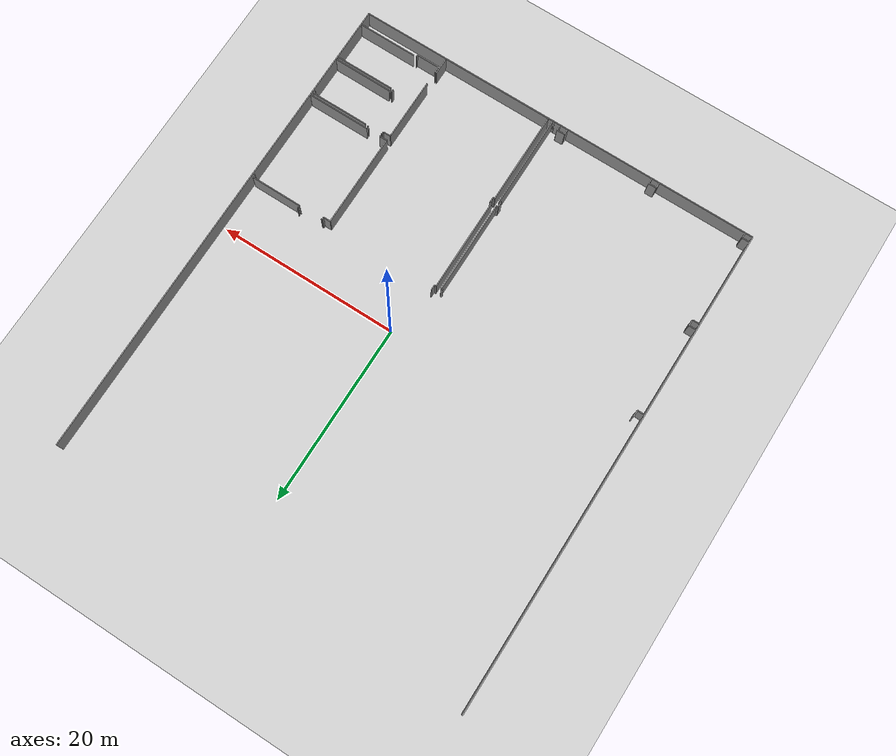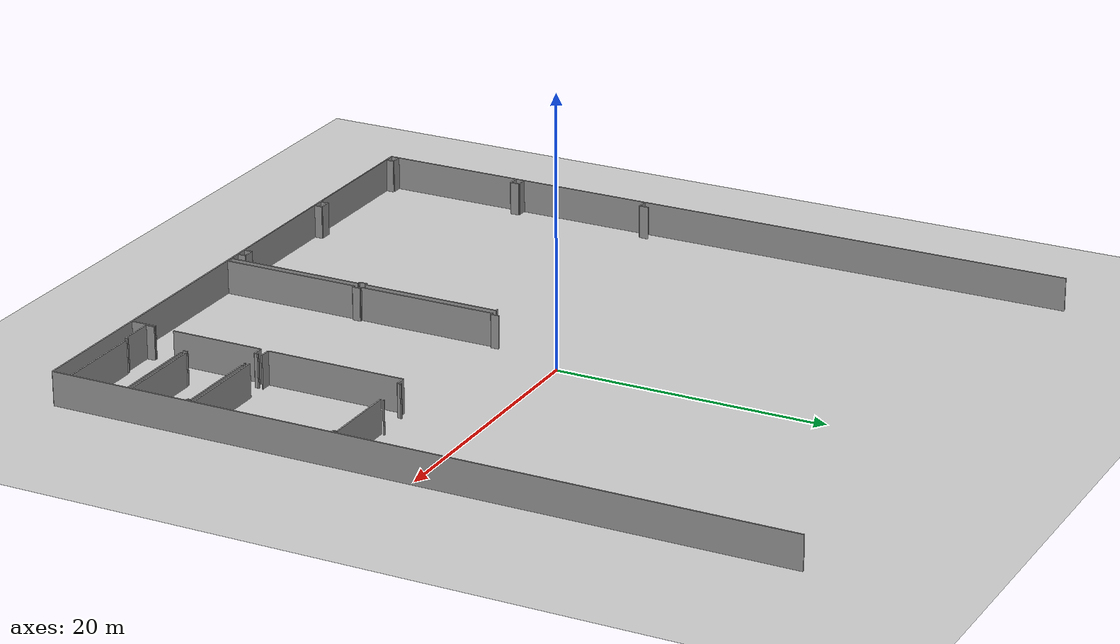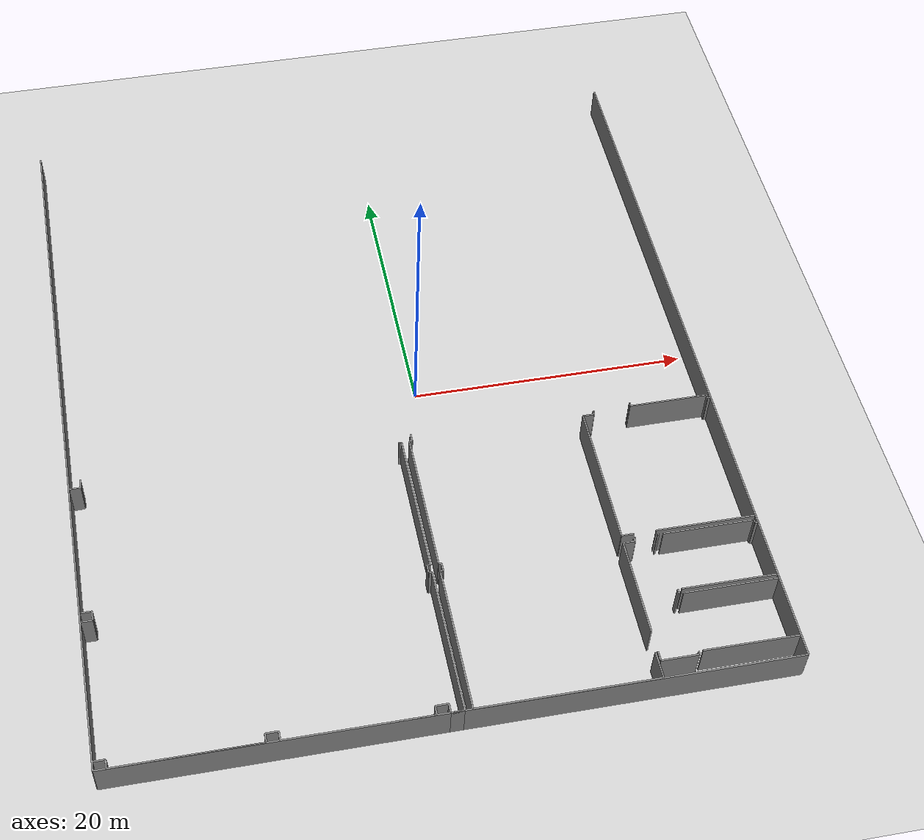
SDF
<sdf version="1.6">
 <world name="default">
  <model name="ground_plane">
   <static>1</static>
   <link name="link">
    <collision name="collision">
     <geometry><plane><normal>0 0 1</normal><size>100 100</size></plane></geometry>
     <surface><friction><ode><mu>100</mu><mu2>50</mu2></ode></friction></surface>
    </collision>
    <visual name="visual">
     <cast_shadows>0</cast_shadows>
     <geometry><plane><normal>0 0 1</normal><size>100 100</size></plane></geometry>
     <material>
      <script><uri>file://media/materials/scripts/gazebo.material</uri><name>Gazebo/Grey</name></script>
     </material>
    </visual>
   </link>
  </model>
  <model name="0510032323">
   <static>1</static>
   <link name="Wall_0">
    <collision name="Wall_0_Collision">
     <geometry><box><size>0.897742633573 0.1 2.5</size></box></geometry>
     <pose>0.448871316787 0 1.25 0 0 0</pose>
    </collision>
    <visual name="Wall_0_Visual">
     <pose>0.448871316787 0 1.25 0 0 0</pose>
     <geometry><box><size>0.897742633573 0.1 2.5</size></box></geometry>
     <material>
      <script><uri>file://media/materials/scripts/gazebo.material</uri><name>Gazebo/Grey</name></script>
      <ambient>1 1 1 1</ambient>
     </material>
    </visual>
    <pose>23.3359776104 -54.5173348226 0 0 0 3.14159265359</pose>
   </link>
   <link name="Wall_1">
    <collision name="Wall_1_Collision">
     <geometry><box><size>0.643384336149 0.1 2.5</size></box></geometry>
     <pose>0.321692168074 0 1.25 0 0 0</pose>
    </collision>
    <visual name="Wall_1_Visual">
     <pose>0.321692168074 0 1.25 0 0 0</pose>
     <geometry><box><size>0.643384336149 0.1 2.5</size></box></geometry>
     <material>
      <script><uri>file://media/materials/scripts/gazebo.material</uri><name>Gazebo/Grey</name></script>
      <ambient>1 1 1 1</ambient>
     </material>
    </visual>
    <pose>22.4382349768 -54.5173348226 0 0 0 1.57079632679</pose>
   </link>
   <link name="Wall_2">
    <collision name="Wall_2_Collision">
     <geometry><box><size>0.882892373693 0.1 2.5</size></box></geometry>
     <pose>0.441446186847 0 1.25 0 0 0</pose>
    </collision>
    <visual name="Wall_2_Visual">
     <pose>0.441446186847 0 1.25 0 0 0</pose>
     <geometry><box><size>0.882892373693 0.1 2.5</size></box></geometry>
     <material>
      <script><uri>file://media/materials/scripts/gazebo.material</uri><name>Gazebo/Grey</name></script>
      <ambient>1 1 1 1</ambient>
     </material>
    </visual>
    <pose>22.4382349768 -53.8739504864 0 0 0 3.14159265359</pose>
   </link>
   <link name="Wall_3">
    <collision name="Wall_3_Collision">
     <geometry><box><size>0.643003560255 0.1 2.5</size></box></geometry>
     <pose>0.321501780127 0 1.25 0 0 0</pose>
    </collision>
    <visual name="Wall_3_Visual">
     <pose>0.321501780127 0 1.25 0 0 0</pose>
     <geometry><box><size>0.643003560255 0.1 2.5</size></box></geometry>
     <material>
      <script><uri>file://media/materials/scripts/gazebo.material</uri><name>Gazebo/Grey</name></script>
      <ambient>1 1 1 1</ambient>
     </material>
    </visual>
    <pose>21.5553426031 -53.8739504864 0 0 0 -1.57079632679</pose>
   </link>
   <link name="Wall_4">
    <collision name="Wall_4_Collision">
     <geometry><box><size>9.93330075584 0.1 2.5</size></box></geometry>
     <pose>4.96665037792 0 1.25 0 0 0</pose>
    </collision>
    <visual name="Wall_4_Visual">
     <pose>4.96665037792 0 1.25 0 0 0</pose>
     <geometry><box><size>9.93330075584 0.1 2.5</size></box></geometry>
     <material>
      <script><uri>file://media/materials/scripts/gazebo.material</uri><name>Gazebo/Grey</name></script>
      <ambient>1 1 1 1</ambient>
     </material>
    </visual>
    <pose>21.5553426031 -54.5169540467 0 0 0 3.14159265359</pose>
   </link>
   <link name="Wall_5">
    <collision name="Wall_5_Collision">
     <geometry><box><size>0.643003560255 0.1 2.5</size></box></geometry>
     <pose>0.321501780127 0 1.25 0 0 0</pose>
    </collision>
    <visual name="Wall_5_Visual">
     <pose>0.321501780127 0 1.25 0 0 0</pose>
     <geometry><box><size>0.643003560255 0.1 2.5</size></box></geometry>
     <material>
      <script><uri>file://media/materials/scripts/gazebo.material</uri><name>Gazebo/Grey</name></script>
      <ambient>1 1 1 1</ambient>
     </material>
    </visual>
    <pose>11.6220418473 -54.5169540467 0 0 0 1.57079632679</pose>
   </link>
   <link name="Wall_6">
    <collision name="Wall_6_Collision">
     <geometry><box><size>0.873372976335 0.1 2.5</size></box></geometry>
     <pose>0.436686488167 0 1.25 0 0 0</pose>
    </collision>
    <visual name="Wall_6_Visual">
     <pose>0.436686488167 0 1.25 0 0 0</pose>
     <geometry><box><size>0.873372976335 0.1 2.5</size></box></geometry>
     <material>
      <script><uri>file://media/materials/scripts/gazebo.material</uri><name>Gazebo/Grey</name></script>
      <ambient>1 1 1 1</ambient>
     </material>
    </visual>
    <pose>11.6220418473 -53.8739504864 0 0 0 3.14159265359</pose>
   </link>
   <link name="Wall_7">
    <collision name="Wall_7_Collision">
     <geometry><box><size>0.633357237598 0.1 2.5</size></box></geometry>
     <pose>0.316678618799 0 1.25 0 0 0</pose>
    </collision>
    <visual name="Wall_7_Visual">
     <pose>0.316678618799 0 1.25 0 0 0</pose>
     <geometry><box><size>0.633357237598 0.1 2.5</size></box></geometry>
     <material>
      <script><uri>file://media/materials/scripts/gazebo.material</uri><name>Gazebo/Grey</name></script>
      <ambient>1 1 1 1</ambient>
     </material>
    </visual>
    <pose>10.7486688709 -53.8739504864 0 0 0 -1.57079632679</pose>
   </link>
   <link name="Wall_8">
    <collision name="Wall_8_Collision">
     <geometry><box><size>9.90753492032 0.1 2.5</size></box></geometry>
     <pose>4.95376746016 0 1.25 0 0 0</pose>
    </collision>
    <visual name="Wall_8_Visual">
     <pose>4.95376746016 0 1.25 0 0 0</pose>
     <geometry><box><size>9.90753492032 0.1 2.5</size></box></geometry>
     <material>
      <script><uri>file://media/materials/scripts/gazebo.material</uri><name>Gazebo/Grey</name></script>
      <ambient>1 1 1 1</ambient>
     </material>
    </visual>
    <pose>10.7486688709 -54.507307724 0 0 0 3.14159265359</pose>
   </link>
   <link name="Wall_9">
    <collision name="Wall_9_Collision">
     <geometry><box><size>0.62244166196 0.1 2.5</size></box></geometry>
     <pose>0.31122083098 0 1.25 0 0 0</pose>
    </collision>
    <visual name="Wall_9_Visual">
     <pose>0.31122083098 0 1.25 0 0 0</pose>
     <geometry><box><size>0.62244166196 0.1 2.5</size></box></geometry>
     <material>
      <script><uri>file://media/materials/scripts/gazebo.material</uri><name>Gazebo/Grey</name></script>
      <ambient>1 1 1 1</ambient>
     </material>
    </visual>
    <pose>0.841133950613 -54.507307724 0 0 0 1.57079632679</pose>
   </link>
   <link name="Wall_10">
    <collision name="Wall_10_Collision">
     <geometry><box><size>0.820318201722 0.1 2.5</size></box></geometry>
     <pose>0.410159100861 0 1.25 0 0 0</pose>
    </collision>
    <visual name="Wall_10_Visual">
     <pose>0.410159100861 0 1.25 0 0 0</pose>
     <geometry><box><size>0.820318201722 0.1 2.5</size></box></geometry>
     <material>
      <script><uri>file://media/materials/scripts/gazebo.material</uri><name>Gazebo/Grey</name></script>
      <ambient>1 1 1 1</ambient>
     </material>
    </visual>
    <pose>0.841133950613 -53.8848660621 0 0 0 3.14159265359</pose>
   </link>
   <link name="Wall_11">
    <collision name="Wall_11_Collision">
     <geometry><box><size>0.813845011518 0.1 2.5</size></box></geometry>
     <pose>0.406922505759 0 1.25 0 0 0</pose>
    </collision>
    <visual name="Wall_11_Visual">
     <pose>0.406922505759 0 1.25 0 0 0</pose>
     <geometry><box><size>0.813845011518 0.1 2.5</size></box></geometry>
     <material>
      <script><uri>file://media/materials/scripts/gazebo.material</uri><name>Gazebo/Grey</name></script>
      <ambient>1 1 1 1</ambient>
     </material>
    </visual>
    <pose>0.020815748891 -43.7803430791 0 0 0 0.0</pose>
   </link>
   <link name="Wall_12">
    <collision name="Wall_12_Collision">
     <geometry><box><size>0.692631351818 0.1 2.5</size></box></geometry>
     <pose>0.346315675909 0 1.25 0 0 0</pose>
    </collision>
    <visual name="Wall_12_Visual">
     <pose>0.346315675909 0 1.25 0 0 0</pose>
     <geometry><box><size>0.692631351818 0.1 2.5</size></box></geometry>
     <material>
      <script><uri>file://media/materials/scripts/gazebo.material</uri><name>Gazebo/Grey</name></script>
      <ambient>1 1 1 1</ambient>
     </material>
    </visual>
    <pose>0.834660760409 -43.7803430791 0 0 0 1.57079632679</pose>
   </link>
   <link name="Wall_13">
    <collision name="Wall_13_Collision">
     <geometry><box><size>0.826283690734 0.1 2.5</size></box></geometry>
     <pose>0.413141845367 0 1.25 0 0 0</pose>
    </collision>
    <visual name="Wall_13_Visual">
     <pose>0.413141845367 0 1.25 0 0 0</pose>
     <geometry><box><size>0.826283690734 0.1 2.5</size></box></geometry>
     <material>
      <script><uri>file://media/materials/scripts/gazebo.material</uri><name>Gazebo/Grey</name></script>
      <ambient>1 1 1 1</ambient>
     </material>
    </visual>
    <pose>0.834660760409 -43.0877117273 0 0 0 3.14159265359</pose>
   </link>
   <link name="Wall_14">
    <collision name="Wall_14_Collision">
     <geometry><box><size>0.826283690734 0.1 2.5</size></box></geometry>
     <pose>0.413141845367 0 1.25 0 0 0</pose>
    </collision>
    <visual name="Wall_14_Visual">
     <pose>0.413141845367 0 1.25 0 0 0</pose>
     <geometry><box><size>0.826283690734 0.1 2.5</size></box></geometry>
     <material>
      <script><uri>file://media/materials/scripts/gazebo.material</uri><name>Gazebo/Grey</name></script>
      <ambient>1 1 1 1</ambient>
     </material>
    </visual>
    <pose>0.00837706967564 -33.0062891485 0 0 0 0.0</pose>
   </link>
   <link name="Wall_15">
    <collision name="Wall_15_Collision">
     <geometry><box><size>0.701008421494 0.1 2.5</size></box></geometry>
     <pose>0.350504210747 0 1.25 0 0 0</pose>
    </collision>
    <visual name="Wall_15_Visual">
     <pose>0.350504210747 0 1.25 0 0 0</pose>
     <geometry><box><size>0.701008421494 0.1 2.5</size></box></geometry>
     <material>
      <script><uri>file://media/materials/scripts/gazebo.material</uri><name>Gazebo/Grey</name></script>
      <ambient>1 1 1 1</ambient>
     </material>
    </visual>
    <pose>0.834660760409 -33.0062891485 0 0 0 1.57079632679</pose>
   </link>
   <link name="Wall_46">
    <collision name="Wall_46_Collision">
     <geometry><box><size>0.200288120427 0.1 2.5</size></box></geometry>
     <pose>0.100144060213 0 1.25 0 0 0</pose>
    </collision>
    <visual name="Wall_46_Visual">
     <pose>0.100144060213 0 1.25 0 0 0</pose>
     <geometry><box><size>0.200288120427 0.1 2.5</size></box></geometry>
     <material>
      <script><uri>file://media/materials/scripts/gazebo.material</uri><name>Gazebo/Grey</name></script>
      <ambient>1 1 1 1</ambient>
     </material>
    </visual>
    <pose>23.1171583964 -33.1148102784 0 0 0 0.0</pose>
   </link>
   <link name="Wall_47">
    <collision name="Wall_47_Collision">
     <geometry><box><size>10.3624351888 0.1 2.5</size></box></geometry>
     <pose>5.18121759438 0 1.25 0 0 0</pose>
    </collision>
    <visual name="Wall_47_Visual">
     <pose>5.18121759438 0 1.25 0 0 0</pose>
     <geometry><box><size>10.3624351888 0.1 2.5</size></box></geometry>
     <material>
      <script><uri>file://media/materials/scripts/gazebo.material</uri><name>Gazebo/Grey</name></script>
      <ambient>1 1 1 1</ambient>
     </material>
    </visual>
    <pose>23.3174465169 -33.1148102784 0 0 0 -1.57079632679</pose>
   </link>
   <link name="Wall_48">
    <collision name="Wall_48_Collision">
     <geometry><box><size>0.217423035672 0.1 2.5</size></box></geometry>
     <pose>0.108711517836 0 1.25 0 0 0</pose>
    </collision>
    <visual name="Wall_48_Visual">
     <pose>0.108711517836 0 1.25 0 0 0</pose>
     <geometry><box><size>0.217423035672 0.1 2.5</size></box></geometry>
     <material>
      <script><uri>file://media/materials/scripts/gazebo.material</uri><name>Gazebo/Grey</name></script>
      <ambient>1 1 1 1</ambient>
     </material>
    </visual>
    <pose>23.3174465169 -43.4772454672 0 0 0 3.14159265359</pose>
   </link>
   <link name="Wall_49">
    <collision name="Wall_49_Collision">
     <geometry><box><size>0.591725739816 0.1 2.5</size></box></geometry>
     <pose>0.295862869908 0 1.25 0 0 0</pose>
    </collision>
    <visual name="Wall_49_Visual">
     <pose>0.295862869908 0 1.25 0 0 0</pose>
     <geometry><box><size>0.591725739816 0.1 2.5</size></box></geometry>
     <material>
      <script><uri>file://media/materials/scripts/gazebo.material</uri><name>Gazebo/Grey</name></script>
      <ambient>1 1 1 1</ambient>
     </material>
    </visual>
    <pose>23.1000234812 -43.4772454672 0 0 0 -1.57079632679</pose>
   </link>
   <link name="Wall_50">
    <collision name="Wall_50_Collision">
     <geometry><box><size>0.22364237528 0.1 2.5</size></box></geometry>
     <pose>0.11182118764 0 1.25 0 0 0</pose>
    </collision>
    <visual name="Wall_50_Visual">
     <pose>0.11182118764 0 1.25 0 0 0</pose>
     <geometry><box><size>0.22364237528 0.1 2.5</size></box></geometry>
     <material>
      <script><uri>file://media/materials/scripts/gazebo.material</uri><name>Gazebo/Grey</name></script>
      <ambient>1 1 1 1</ambient>
     </material>
    </visual>
    <pose>23.1000234812 -44.068971207 0 0 0 0.0</pose>
   </link>
   <link name="Wall_51">
    <collision name="Wall_51_Collision">
     <geometry><box><size>10.4483708693 0.1 2.5</size></box></geometry>
     <pose>5.22418543466 0 1.25 0 0 0</pose>
    </collision>
    <visual name="Wall_51_Visual">
     <pose>5.22418543466 0 1.25 0 0 0</pose>
     <geometry><box><size>10.4483708693 0.1 2.5</size></box></geometry>
     <material>
      <script><uri>file://media/materials/scripts/gazebo.material</uri><name>Gazebo/Grey</name></script>
      <ambient>1 1 1 1</ambient>
     </material>
    </visual>
    <pose>23.3236658565 -44.068971207 0 0 0 -1.56961798455</pose>
   </link>
   <link name="Wall_72">
    <collision name="Wall_72_Collision">
     <geometry><box><size>0.104205669753 0.1 2.5</size></box></geometry>
     <pose>0.0521028348765 0 1.25 0 0 0</pose>
    </collision>
    <visual name="Wall_72_Visual">
     <pose>0.0521028348765 0 1.25 0 0 0</pose>
     <geometry><box><size>0.104205669753 0.1 2.5</size></box></geometry>
     <material>
      <script><uri>file://media/materials/scripts/gazebo.material</uri><name>Gazebo/Grey</name></script>
      <ambient>1 1 1 1</ambient>
     </material>
    </visual>
    <pose>40.1125827394 -32.5487234488 0 0 0 3.14159265359</pose>
   </link>
   <link name="Wall_78">
    <collision name="Wall_78_Collision">
     <geometry><box><size>0.211457546661 0.1 2.5</size></box></geometry>
     <pose>0.10572877333 0 1.25 0 0 0</pose>
    </collision>
    <visual name="Wall_78_Visual">
     <pose>0.10572877333 0 1.25 0 0 0</pose>
     <geometry><box><size>0.211457546661 0.1 2.5</size></box></geometry>
     <material>
      <script><uri>file://media/materials/scripts/gazebo.material</uri><name>Gazebo/Grey</name></script>
      <ambient>1 1 1 1</ambient>
     </material>
    </visual>
    <pose>45.893776218 -33.0865059369 0 0 0 3.14159265359</pose>
   </link>
   <link name="Wall_79">
    <collision name="Wall_79_Collision">
     <geometry><box><size>0.285328070164 0.1 2.5</size></box></geometry>
     <pose>0.142664035082 0 1.25 0 0 0</pose>
    </collision>
    <visual name="Wall_79_Visual">
     <pose>0.142664035082 0 1.25 0 0 0</pose>
     <geometry><box><size>0.285328070164 0.1 2.5</size></box></geometry>
     <material>
      <script><uri>file://media/materials/scripts/gazebo.material</uri><name>Gazebo/Grey</name></script>
      <ambient>1 1 1 1</ambient>
     </material>
    </visual>
    <pose>45.6823186713 -33.0865059369 0 0 0 1.57079632679</pose>
   </link>
   <link name="Wall_80">
    <collision name="Wall_80_Collision">
     <geometry><box><size>5.6786378377 0.1 2.5</size></box></geometry>
     <pose>2.83931891885 0 1.25 0 0 0</pose>
    </collision>
    <visual name="Wall_80_Visual">
     <pose>2.83931891885 0 1.25 0 0 0</pose>
     <geometry><box><size>5.6786378377 0.1 2.5</size></box></geometry>
     <material>
      <script><uri>file://media/materials/scripts/gazebo.material</uri><name>Gazebo/Grey</name></script>
      <ambient>1 1 1 1</ambient>
     </material>
    </visual>
    <pose>45.6823186713 -32.8011778668 0 0 0 3.14159265359</pose>
   </link>
   <link name="Wall_81">
    <collision name="Wall_81_Collision">
     <geometry><box><size>0.106363399821 0.1 2.5</size></box></geometry>
     <pose>0.0531816999105 0 1.25 0 0 0</pose>
    </collision>
    <visual name="Wall_81_Visual">
     <pose>0.0531816999105 0 1.25 0 0 0</pose>
     <geometry><box><size>0.106363399821 0.1 2.5</size></box></geometry>
     <material>
      <script><uri>file://media/materials/scripts/gazebo.material</uri><name>Gazebo/Grey</name></script>
      <ambient>1 1 1 1</ambient>
     </material>
    </visual>
    <pose>37.371377076 -32.8011778668 0 0 0 3.14159265359</pose>
   </link>
   <link name="Wall_82">
    <collision name="Wall_82_Collision">
     <geometry><box><size>0.271873988564 0.1 2.5</size></box></geometry>
     <pose>0.135936994282 0 1.25 0 0 0</pose>
    </collision>
    <visual name="Wall_82_Visual">
     <pose>0.135936994282 0 1.25 0 0 0</pose>
     <geometry><box><size>0.271873988564 0.1 2.5</size></box></geometry>
     <material>
      <script><uri>file://media/materials/scripts/gazebo.material</uri><name>Gazebo/Grey</name></script>
      <ambient>1 1 1 1</ambient>
     </material>
    </visual>
    <pose>37.2650136762 -32.8011778668 0 0 0 -1.57079632679</pose>
   </link>
   <link name="Wall_83">
    <collision name="Wall_83_Collision">
     <geometry><box><size>0.78884072779 0.1 2.5</size></box></geometry>
     <pose>0.394420363895 0 1.25 0 0 0</pose>
    </collision>
    <visual name="Wall_83_Visual">
     <pose>0.394420363895 0 1.25 0 0 0</pose>
     <geometry><box><size>0.78884072779 0.1 2.5</size></box></geometry>
     <material>
      <script><uri>file://media/materials/scripts/gazebo.material</uri><name>Gazebo/Grey</name></script>
      <ambient>1 1 1 1</ambient>
     </material>
    </visual>
    <pose>37.2650136762 -33.0730518553 0 0 0 3.14159265359</pose>
   </link>
   <link name="Wall_84">
    <collision name="Wall_84_Collision">
     <geometry><box><size>10.4185361705 0.1 2.5</size></box></geometry>
     <pose>5.20926808527 0 1.25 0 0 0</pose>
    </collision>
    <visual name="Wall_84_Visual">
     <pose>5.20926808527 0 1.25 0 0 0</pose>
     <geometry><box><size>10.4185361705 0.1 2.5</size></box></geometry>
     <material>
      <script><uri>file://media/materials/scripts/gazebo.material</uri><name>Gazebo/Grey</name></script>
      <ambient>1 1 1 1</ambient>
     </material>
    </visual>
    <pose>36.4761729484 -33.0730518553 0 0 0 -1.57079632679</pose>
   </link>
   <link name="Wall_85">
    <collision name="Wall_85_Collision">
     <geometry><box><size>0.870834470372 0.1 2.5</size></box></geometry>
     <pose>0.435417235186 0 1.25 0 0 0</pose>
    </collision>
    <visual name="Wall_85_Visual">
     <pose>0.435417235186 0 1.25 0 0 0</pose>
     <geometry><box><size>0.870834470372 0.1 2.5</size></box></geometry>
     <material>
      <script><uri>file://media/materials/scripts/gazebo.material</uri><name>Gazebo/Grey</name></script>
      <ambient>1 1 1 1</ambient>
     </material>
    </visual>
    <pose>36.4761729484 -43.4915880259 0 0 0 0.0</pose>
   </link>
   <link name="Wall_86">
    <collision name="Wall_86_Collision">
     <geometry><box><size>6.99740437649 0.1 2.5</size></box></geometry>
     <pose>3.49870218825 0 1.25 0 0 0</pose>
    </collision>
    <visual name="Wall_86_Visual">
     <pose>3.49870218825 0 1.25 0 0 0</pose>
     <geometry><box><size>6.99740437649 0.1 2.5</size></box></geometry>
     <material>
      <script><uri>file://media/materials/scripts/gazebo.material</uri><name>Gazebo/Grey</name></script>
      <ambient>1 1 1 1</ambient>
     </material>
    </visual>
    <pose>38.8963845329 -43.4915880259 0 0 0 -0.00190458684998</pose>
   </link>
   <link name="Wall_87">
    <collision name="Wall_87_Collision">
     <geometry><box><size>2.57721817824 0.1 2.5</size></box></geometry>
     <pose>1.28860908912 0 1.25 0 0 0</pose>
    </collision>
    <visual name="Wall_87_Visual">
     <pose>1.28860908912 0 1.25 0 0 0</pose>
     <geometry><box><size>2.57721817824 0.1 2.5</size></box></geometry>
     <material>
      <script><uri>file://media/materials/scripts/gazebo.material</uri><name>Gazebo/Grey</name></script>
      <ambient>1 1 1 1</ambient>
     </material>
    </visual>
    <pose>39.0070633928 -53.2609012965 0 0 0 3.14159265359</pose>
   </link>
   <link name="Wall_88">
    <collision name="Wall_88_Collision">
     <geometry><box><size>0.674100258293 0.1 2.5</size></box></geometry>
     <pose>0.337050129146 0 1.25 0 0 0</pose>
    </collision>
    <visual name="Wall_88_Visual">
     <pose>0.337050129146 0 1.25 0 0 0</pose>
     <geometry><box><size>0.674100258293 0.1 2.5</size></box></geometry>
     <material>
      <script><uri>file://media/materials/scripts/gazebo.material</uri><name>Gazebo/Grey</name></script>
      <ambient>1 1 1 1</ambient>
     </material>
    </visual>
    <pose>36.4298452146 -53.2609012965 0 0 0 1.57079632679</pose>
   </link>
   <link name="Wall_89">
    <collision name="Wall_89_Collision">
     <geometry><box><size>6.94751004296 0.1 2.5</size></box></geometry>
     <pose>3.47375502148 0 1.25 0 0 0</pose>
    </collision>
    <visual name="Wall_89_Visual">
     <pose>3.47375502148 0 1.25 0 0 0</pose>
     <geometry><box><size>6.94751004296 0.1 2.5</size></box></geometry>
     <material>
      <script><uri>file://media/materials/scripts/gazebo.material</uri><name>Gazebo/Grey</name></script>
      <ambient>1 1 1 1</ambient>
     </material>
    </visual>
    <pose>36.4298452146 -51.0320930616 0 0 0 1.57079632679</pose>
   </link>
   <link name="Wall_90">
    <collision name="Wall_90_Collision">
     <geometry><box><size>0.836437714583 0.1 2.5</size></box></geometry>
     <pose>0.418218857292 0 1.25 0 0 0</pose>
    </collision>
    <visual name="Wall_90_Visual">
     <pose>0.418218857292 0 1.25 0 0 0</pose>
     <geometry><box><size>0.836437714583 0.1 2.5</size></box></geometry>
     <material>
      <script><uri>file://media/materials/scripts/gazebo.material</uri><name>Gazebo/Grey</name></script>
      <ambient>1 1 1 1</ambient>
     </material>
    </visual>
    <pose>36.4298452146 -44.0845830187 0 0 0 0.0</pose>
   </link>
   <link name="Wall_91">
    <collision name="Wall_91_Collision">
     <geometry><box><size>0.286851173742 0.1 2.5</size></box></geometry>
     <pose>0.143425586871 0 1.25 0 0 0</pose>
    </collision>
    <visual name="Wall_91_Visual">
     <pose>0.143425586871 0 1.25 0 0 0</pose>
     <geometry><box><size>0.286851173742 0.1 2.5</size></box></geometry>
     <material>
      <script><uri>file://media/materials/scripts/gazebo.material</uri><name>Gazebo/Grey</name></script>
      <ambient>1 1 1 1</ambient>
     </material>
    </visual>
    <pose>37.2662829292 -44.0845830187 0 0 0 1.57079632679</pose>
   </link>
   <link name="Wall_92">
    <collision name="Wall_92_Collision">
     <geometry><box><size>0.102682566176 0.1 2.5</size></box></geometry>
     <pose>0.0513412830878 0 1.25 0 0 0</pose>
    </collision>
    <visual name="Wall_92_Visual">
     <pose>0.0513412830878 0 1.25 0 0 0</pose>
     <geometry><box><size>0.102682566176 0.1 2.5</size></box></geometry>
     <material>
      <script><uri>file://media/materials/scripts/gazebo.material</uri><name>Gazebo/Grey</name></script>
      <ambient>1 1 1 1</ambient>
     </material>
    </visual>
    <pose>37.2662829292 -43.7977318449 0 0 0 0.0</pose>
   </link>
   <link name="Wall_93">
    <collision name="Wall_93_Collision">
     <geometry><box><size>0.113090440621 0.1 2.5</size></box></geometry>
     <pose>0.0565452203106 0 1.25 0 0 0</pose>
    </collision>
    <visual name="Wall_93_Visual">
     <pose>0.0565452203106 0 1.25 0 0 0</pose>
     <geometry><box><size>0.113090440621 0.1 2.5</size></box></geometry>
     <material>
      <script><uri>file://media/materials/scripts/gazebo.material</uri><name>Gazebo/Grey</name></script>
      <ambient>1 1 1 1</ambient>
     </material>
    </visual>
    <pose>38.9074270338 -43.7977318449 0 0 0 0.0</pose>
   </link>
   <link name="Wall_94">
    <collision name="Wall_94_Collision">
     <geometry><box><size>0.353360029954 0.1 2.5</size></box></geometry>
     <pose>0.176680014977 0 1.25 0 0 0</pose>
    </collision>
    <visual name="Wall_94_Visual">
     <pose>0.176680014977 0 1.25 0 0 0</pose>
     <geometry><box><size>0.353360029954 0.1 2.5</size></box></geometry>
     <material>
      <script><uri>file://media/materials/scripts/gazebo.material</uri><name>Gazebo/Grey</name></script>
      <ambient>1 1 1 1</ambient>
     </material>
    </visual>
    <pose>39.0205174744 -48.2685485458 0 0 0 -1.57079632679</pose>
   </link>
   <link name="Wall_95">
    <collision name="Wall_95_Collision">
     <geometry><box><size>0.225567074682 0.1 2.5</size></box></geometry>
     <pose>0.112783537341 0 1.25 0 0 0</pose>
    </collision>
    <visual name="Wall_95_Visual">
     <pose>0.112783537341 0 1.25 0 0 0</pose>
     <geometry><box><size>0.225567074682 0.1 2.5</size></box></geometry>
     <material>
      <script><uri>file://media/materials/scripts/gazebo.material</uri><name>Gazebo/Grey</name></script>
      <ambient>1 1 1 1</ambient>
     </material>
    </visual>
    <pose>39.0205174744 -53.0357358177 0 0 0 -1.63047734089</pose>
   </link>
   <link name="Wall_96">
    <collision name="Wall_96_Collision">
     <geometry><box><size>0.223007748789 0.1 2.5</size></box></geometry>
     <pose>0.111503874395 0 1.25 0 0 0</pose>
    </collision>
    <visual name="Wall_96_Visual">
     <pose>0.111503874395 0 1.25 0 0 0</pose>
     <geometry><box><size>0.223007748789 0.1 2.5</size></box></geometry>
     <material>
      <script><uri>file://media/materials/scripts/gazebo.material</uri><name>Gazebo/Grey</name></script>
      <ambient>1 1 1 1</ambient>
     </material>
    </visual>
    <pose>45.8982186034 -44.0743020695 0 0 0 3.14159265359</pose>
   </link>
   <link name="Wall_97">
    <collision name="Wall_97_Collision">
     <geometry><box><size>0.25397752153 0.1 2.5</size></box></geometry>
     <pose>0.126988760765 0 1.25 0 0 0</pose>
    </collision>
    <visual name="Wall_97_Visual">
     <pose>0.126988760765 0 1.25 0 0 0</pose>
     <geometry><box><size>0.25397752153 0.1 2.5</size></box></geometry>
     <material>
      <script><uri>file://media/materials/scripts/gazebo.material</uri><name>Gazebo/Grey</name></script>
      <ambient>1 1 1 1</ambient>
     </material>
    </visual>
    <pose>45.6752108547 -44.0743020695 0 0 0 1.57079632679</pose>
   </link>
   <link name="Wall_98">
    <collision name="Wall_98_Collision">
     <geometry><box><size>6.38459634582 0.1 2.5</size></box></geometry>
     <pose>3.19229817291 0 1.25 0 0 0</pose>
    </collision>
    <visual name="Wall_98_Visual">
     <pose>3.19229817291 0 1.25 0 0 0</pose>
     <geometry><box><size>6.38459634582 0.1 2.5</size></box></geometry>
     <material>
      <script><uri>file://media/materials/scripts/gazebo.material</uri><name>Gazebo/Grey</name></script>
      <ambient>1 1 1 1</ambient>
     </material>
    </visual>
    <pose>45.6752108547 -43.820324548 0 0 0 3.14159265359</pose>
   </link>
   <link name="Wall_99">
    <collision name="Wall_99_Collision">
     <geometry><box><size>6.60766970856 0.1 2.5</size></box></geometry>
     <pose>3.30383485428 0 1.25 0 0 0</pose>
    </collision>
    <visual name="Wall_99_Visual">
     <pose>3.30383485428 0 1.25 0 0 0</pose>
     <geometry><box><size>6.60766970856 0.1 2.5</size></box></geometry>
     <material>
      <script><uri>file://media/materials/scripts/gazebo.material</uri><name>Gazebo/Grey</name></script>
      <ambient>1 1 1 1</ambient>
     </material>
    </visual>
    <pose>39.2906145088 -48.2748948107 0 0 0 -0.00445645256652</pose>
   </link>
   <link name="Wall_100">
    <collision name="Wall_100_Collision">
     <geometry><box><size>6.5883114493 0.1 2.5</size></box></geometry>
     <pose>3.29415572465 0 1.25 0 0 0</pose>
    </collision>
    <visual name="Wall_100_Visual">
     <pose>3.29415572465 0 1.25 0 0 0</pose>
     <geometry><box><size>6.5883114493 0.1 2.5</size></box></geometry>
     <material>
      <script><uri>file://media/materials/scripts/gazebo.material</uri><name>Gazebo/Grey</name></script>
      <ambient>1 1 1 1</ambient>
     </material>
    </visual>
    <pose>45.8942839192 -48.5991889473 0 0 0 3.14159265359</pose>
   </link>
   <link name="Wall_101">
    <collision name="Wall_101_Collision">
     <geometry><box><size>6.58836536671 0.1 2.5</size></box></geometry>
     <pose>3.29418268336 0 1.25 0 0 0</pose>
    </collision>
    <visual name="Wall_101_Visual">
     <pose>3.29418268336 0 1.25 0 0 0</pose>
     <geometry><box><size>6.58836536671 0.1 2.5</size></box></geometry>
     <material>
      <script><uri>file://media/materials/scripts/gazebo.material</uri><name>Gazebo/Grey</name></script>
      <ambient>1 1 1 1</ambient>
     </material>
    </visual>
    <pose>39.3059724699 -53.0219009602 0 0 0 -0.00404567503949</pose>
   </link>
   <link name="Wall_102">
    <collision name="Wall_102_Collision">
     <geometry><box><size>12.4093594715 0.1 2.5</size></box></geometry>
     <pose>6.20467973574 0 1.25 0 0 0</pose>
    </collision>
    <visual name="Wall_102_Visual">
     <pose>6.20467973574 0 1.25 0 0 0</pose>
     <geometry><box><size>12.4093594715 0.1 2.5</size></box></geometry>
     <material>
      <script><uri>file://media/materials/scripts/gazebo.material</uri><name>Gazebo/Grey</name></script>
      <ambient>1 1 1 1</ambient>
     </material>
    </visual>
    <pose>36.2776617822 -54.4977883267 0 0 0 3.14159265359</pose>
   </link>
   <link name="Wall_103">
    <collision name="Wall_103_Collision">
     <geometry><box><size>10.4162515152 0.1 2.5</size></box></geometry>
     <pose>5.20812575759 0 1.25 0 0 0</pose>
    </collision>
    <visual name="Wall_103_Visual">
     <pose>5.20812575759 0 1.25 0 0 0</pose>
     <geometry><box><size>10.4162515152 0.1 2.5</size></box></geometry>
     <material>
      <script><uri>file://media/materials/scripts/gazebo.material</uri><name>Gazebo/Grey</name></script>
      <ambient>1 1 1 1</ambient>
     </material>
    </visual>
    <pose>23.8683023107 -54.4977883267 0 0 0 1.57079632679</pose>
   </link>
   <link name="Wall_104">
    <collision name="Wall_104_Collision">
     <geometry><box><size>0.204857431159 0.1 2.5</size></box></geometry>
     <pose>0.102428715579 0 1.25 0 0 0</pose>
    </collision>
    <visual name="Wall_104_Visual">
     <pose>0.102428715579 0 1.25 0 0 0</pose>
     <geometry><box><size>0.204857431159 0.1 2.5</size></box></geometry>
     <material>
      <script><uri>file://media/materials/scripts/gazebo.material</uri><name>Gazebo/Grey</name></script>
      <ambient>1 1 1 1</ambient>
     </material>
    </visual>
    <pose>23.8683023107 -44.0815368115 0 0 0 0.0</pose>
   </link>
   <link name="Wall_105">
    <collision name="Wall_105_Collision">
     <geometry><box><size>0.585633325506 0.1 2.5</size></box></geometry>
     <pose>0.292816662753 0 1.25 0 0 0</pose>
    </collision>
    <visual name="Wall_105_Visual">
     <pose>0.292816662753 0 1.25 0 0 0</pose>
     <geometry><box><size>0.585633325506 0.1 2.5</size></box></geometry>
     <material>
      <script><uri>file://media/materials/scripts/gazebo.material</uri><name>Gazebo/Grey</name></script>
      <ambient>1 1 1 1</ambient>
     </material>
    </visual>
    <pose>24.0731597418 -44.0815368115 0 0 0 1.57079632679</pose>
   </link>
   <link name="Wall_106">
    <collision name="Wall_106_Collision">
     <geometry><box><size>0.197495763868 0.1 2.5</size></box></geometry>
     <pose>0.0987478819341 0 1.25 0 0 0</pose>
    </collision>
    <visual name="Wall_106_Visual">
     <pose>0.0987478819341 0 1.25 0 0 0</pose>
     <geometry><box><size>0.197495763868 0.1 2.5</size></box></geometry>
     <material>
      <script><uri>file://media/materials/scripts/gazebo.material</uri><name>Gazebo/Grey</name></script>
      <ambient>1 1 1 1</ambient>
     </material>
    </visual>
    <pose>24.0731597418 -43.495903486 0 0 0 3.14159265359</pose>
   </link>
   <link name="Wall_107">
    <collision name="Wall_107_Collision">
     <geometry><box><size>10.4055897901 0.1 2.5</size></box></geometry>
     <pose>5.20279489506 0 1.25 0 0 0</pose>
    </collision>
    <visual name="Wall_107_Visual">
     <pose>5.20279489506 0 1.25 0 0 0</pose>
     <geometry><box><size>10.4055897901 0.1 2.5</size></box></geometry>
     <material>
      <script><uri>file://media/materials/scripts/gazebo.material</uri><name>Gazebo/Grey</name></script>
      <ambient>1 1 1 1</ambient>
     </material>
    </visual>
    <pose>23.875663978 -43.495903486 0 0 0 1.57079632679</pose>
   </link>
   <link name="Wall_108">
    <collision name="Wall_108_Collision">
     <geometry><box><size>0.198638091551 0.1 2.5</size></box></geometry>
     <pose>0.0993190457756 0 1.25 0 0 0</pose>
    </collision>
    <visual name="Wall_108_Visual">
     <pose>0.0993190457756 0 1.25 0 0 0</pose>
     <geometry><box><size>0.198638091551 0.1 2.5</size></box></geometry>
     <material>
      <script><uri>file://media/materials/scripts/gazebo.material</uri><name>Gazebo/Grey</name></script>
      <ambient>1 1 1 1</ambient>
     </material>
    </visual>
    <pose>23.875663978 -33.0903136959 0 0 0 0.0</pose>
   </link>
   <link name="Wall_109">
    <collision name="Wall_109_Collision">
     <geometry><box><size>0.591725739816 0.1 2.5</size></box></geometry>
     <pose>0.295862869908 0 1.25 0 0 0</pose>
    </collision>
    <visual name="Wall_109_Visual">
     <pose>0.295862869908 0 1.25 0 0 0</pose>
     <geometry><box><size>0.591725739816 0.1 2.5</size></box></geometry>
     <material>
      <script><uri>file://media/materials/scripts/gazebo.material</uri><name>Gazebo/Grey</name></script>
      <ambient>1 1 1 1</ambient>
     </material>
    </visual>
    <pose>24.0743020695 -33.0903136959 0 0 0 1.57079632679</pose>
   </link>
   <link name="Wall_114">
    <collision name="Wall_114_Collision">
     <geometry><box><size>1.90376727493 0.1 2.5</size></box></geometry>
     <pose>0.951883637465 0 1.25 0 0 0</pose>
    </collision>
    <visual name="Wall_114_Visual">
     <pose>0.951883637465 0 1.25 0 0 0</pose>
     <geometry><box><size>1.90376727493 0.1 2.5</size></box></geometry>
     <material>
      <script><uri>file://media/materials/scripts/gazebo.material</uri><name>Gazebo/Grey</name></script>
      <ambient>1 1 1 1</ambient>
     </material>
    </visual>
    <pose>36.2701731896 -52.5940357802 0 0 0 -1.56686275151</pose>
   </link>
   <link name="Wall_115">
    <collision name="Wall_115_Collision">
     <geometry><box><size>54.5173348226 0.1 2.5</size></box></geometry>
     <pose>27.2586674113 0 1.25 0 0 0</pose>
    </collision>
    <visual name="Wall_115_Visual">
     <pose>27.2586674113 0 1.25 0 0 0</pose>
     <geometry><box><size>54.5173348226 0.1 2.5</size></box></geometry>
     <material>
      <script><uri>file://media/materials/scripts/gazebo.material</uri><name>Gazebo/Grey</name></script>
      <ambient>1 1 1 1</ambient>
     </material>
    </visual>
    <pose>45.9020263624 -54.5173348226 0 0 0 1.57079632679</pose>
   </link>
   <link name="Wall_116">
    <collision name="Wall_116_Collision">
     <geometry><box><size>45.9020263624 0.1 2.5</size></box></geometry>
     <pose>22.9510131812 0 1.25 0 0 0</pose>
    </collision>
    <visual name="Wall_116_Visual">
     <pose>22.9510131812 0 1.25 0 0 0</pose>
     <geometry><box><size>45.9020263624 0.1 2.5</size></box></geometry>
     <material>
      <script><uri>file://media/materials/scripts/gazebo.material</uri><name>Gazebo/Grey</name></script>
      <ambient>1 1 1 1</ambient>
     </material>
    </visual>
    <pose>45.9020263624 -54.5173348226 0 0 0 3.14159265359</pose>
   </link>
   <link name="Wall_117">
    <collision name="Wall_117_Collision">
     <geometry><box><size>54.5173348226 0.1 2.5</size></box></geometry>
     <pose>27.2586674113 0 1.25 0 0 0</pose>
    </collision>
    <visual name="Wall_117_Visual">
     <pose>27.2586674113 0 1.25 0 0 0</pose>
     <geometry><box><size>54.5173348226 0.1 2.5</size></box></geometry>
     <material>
      <script><uri>file://media/materials/scripts/gazebo.material</uri><name>Gazebo/Grey</name></script>
      <ambient>1 1 1 1</ambient>
     </material>
    </visual>
    <pose>0.0 -54.5173348226 0 0 0 1.57079632679</pose>
   </link>
   <pose>-25.5 27.2673348226 0 0 0 0</pose>
  </model>
 </world>
</sdf>
